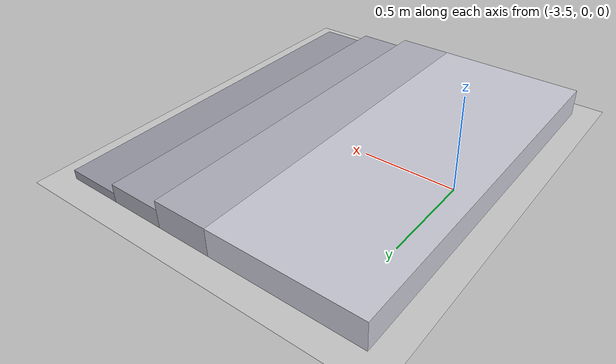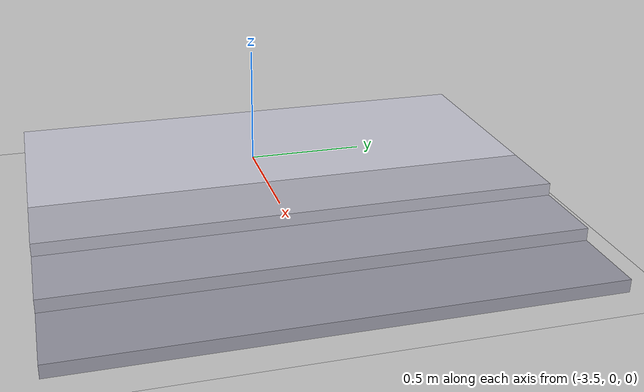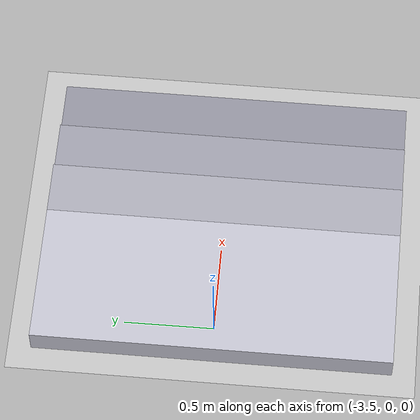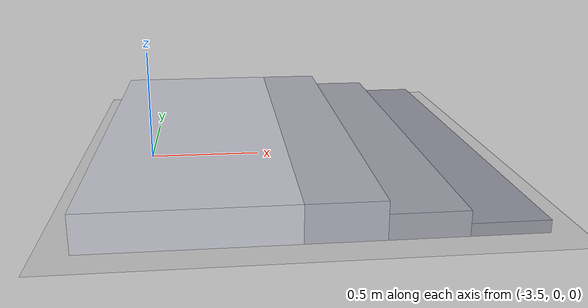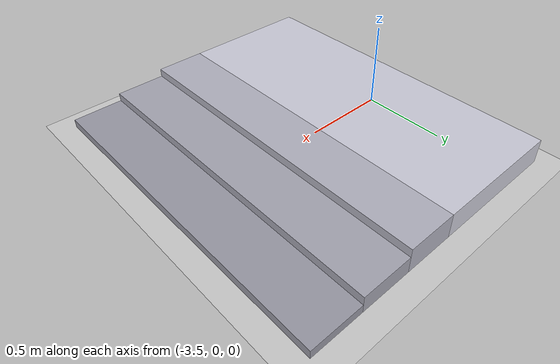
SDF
<?xml version="1.0" ?>
<!-- Test staircase: 3 steps of 5 cm, 0.30 m treads, 2 m wide, 0.8 m landing. Starts at x = -2.0;
     the robot walks towards -x. Steps are solid boxes down to the ground. -->
<sdf version="1.5">
  <world name="default">
    <include>
      <uri>model://sun</uri>
    </include>
    <include>
      <uri>model://ground_plane</uri>
    </include>

    <model name="step_1">
      <static>true</static>
      <pose>-2.15 0 0.025 0 0 0</pose>
      <link name="link">
        <collision name="collision">
          <geometry><box><size>0.30 2.0 0.05</size></box></geometry>
        </collision>
        <visual name="visual">
          <geometry><box><size>0.30 2.0 0.05</size></box></geometry>
          <material><ambient>0.6 0.6 0.65 1</ambient><diffuse>0.6 0.6 0.65 1</diffuse></material>
        </visual>
      </link>
    </model>

    <model name="step_2">
      <static>true</static>
      <pose>-2.45 0 0.05 0 0 0</pose>
      <link name="link">
        <collision name="collision">
          <geometry><box><size>0.30 2.0 0.10</size></box></geometry>
        </collision>
        <visual name="visual">
          <geometry><box><size>0.30 2.0 0.10</size></box></geometry>
          <material><ambient>0.65 0.65 0.7 1</ambient><diffuse>0.65 0.65 0.7 1</diffuse></material>
        </visual>
      </link>
    </model>

    <model name="step_3">
      <static>true</static>
      <pose>-2.75 0 0.075 0 0 0</pose>
      <link name="link">
        <collision name="collision">
          <geometry><box><size>0.30 2.0 0.15</size></box></geometry>
        </collision>
        <visual name="visual">
          <geometry><box><size>0.30 2.0 0.15</size></box></geometry>
          <material><ambient>0.7 0.7 0.75 1</ambient><diffuse>0.7 0.7 0.75 1</diffuse></material>
        </visual>
      </link>
    </model>

    <model name="landing">
      <static>true</static>
      <pose>-3.30 0 0.075 0 0 0</pose>
      <link name="link">
        <collision name="collision">
          <geometry><box><size>0.8 2.0 0.15</size></box></geometry>
        </collision>
        <visual name="visual">
          <geometry><box><size>0.8 2.0 0.15</size></box></geometry>
          <material><ambient>0.8 0.8 0.85 1</ambient><diffuse>0.8 0.8 0.85 1</diffuse></material>
        </visual>
      </link>
    </model>
  </world>
</sdf>
